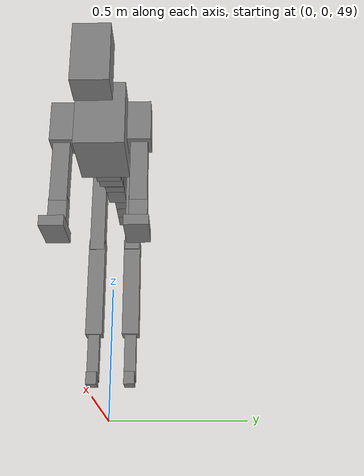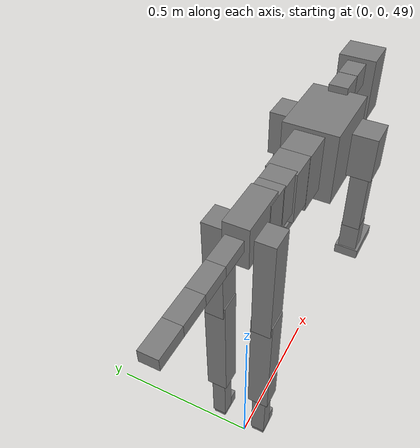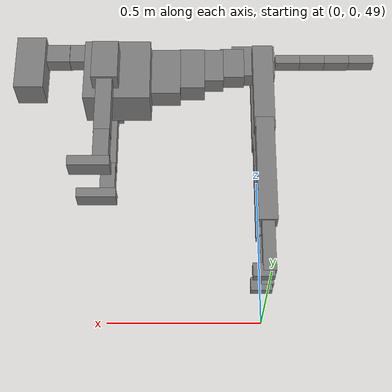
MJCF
<mujoco model="dog">

    <default>
        <joint armature="0.02" stiffness="1" damping="0.2" limited="true"/>
        <geom condim="3" friction="1 0.05 0.05" margin="0.01"/>
        <motor ctrllimited="true" ctrlrange="-1.0 1.0" forcelimited="true" gear="50"/>
    </default>

    <compiler inertiafromgeom="true" angle="radian"/>

    <option timestep="0.016" iterations="50" tolerance="1e-10" solver="Newton" jacobian="dense" cone="pyramidal"/>

    <size nconmax="20000" njmax="60000" nstack="5000000"/>
    <visual>
        <map force="0.1" zfar="30"/>
        <rgba haze="0.15 0.25 0.35 1"/>
        <quality shadowsize="2048"/>
        <global offwidth="800" offheight="800"/>
    </visual>

    <asset>
        <texture type="skybox" builtin="gradient" rgb1="0.3 0.5 0.7" rgb2="0 0 0" width="512" height="512"/>
        <texture name="texplane" type="2d" builtin="checker" rgb1=".2 .3 .4" rgb2=".1 0.15 0.2" width="512" height="512"
                 mark="cross" markrgb=".8 .8 .8"/>
        <texture name="texgeom" type="cube" builtin="flat" mark="cross" width="127" height="1278" rgb1="0.8 0.6 0.4"
                 rgb2="0.8 0.6 0.4" markrgb="1 1 1" random="0.01"/>

        <material name="matplane" reflectance="0.3" texture="texplane" texrepeat="1 1" texuniform="true"/>
        <material name="matgeom" texture="texgeom" texuniform="true" rgba="0.8 0.6 .4 1"/>
    </asset>

    <worldbody>
        <geom name="floor" pos="0 0 0" size="0 0 .25" type="plane" material="matplane" condim="3"/>

        <light directional="false" diffuse=".2 .2 .2" specular="0 0 0" pos="0 0 5" dir="0 0 -1" castshadow="false"/>
        <light mode="targetbodycom" target="torso" directional="false" diffuse=".8 .8 .8" specular="0.3 0.3 0.3"
               pos="0 0 4.0" dir="0 0 -1"/>

        <body name="root" pos="0 0 50">
            <freejoint name="root_1"/>
            <geom type="box" pos="0 0 -0.02" size="0.0774  0.0358  0.063" density="2030"/>

            <body name="spine1" pos="0.054 0 0">
                <joint name="spine1_y" axis="0 1 0" range="0 0.7" limited="true"/>
                <geom type="box" pos="0.02375 0 -0.03" size="0.04375  0.0375  0.05985" density="2030"/>

                <body name="spine2" pos="0.0612 0 0">
                    <joint name="spine2_y" axis="0 1 0" range="-0.15 0.15" limited="true"/>
                    <geom type="box" pos="0.03555  0  -0.04" size="0.04055  0.039  0.06615" density="2030"/>

                    <body name="spine3" pos="0.0730 0 0">
                        <joint name="spine3_y" axis="0 1 0" range="-0.15 0.15" limited="true"/>
                        <geom type="box" pos="0.03555  0  -0.057" size="0.04555  0.0445  0.081" density="2030"/>

                        <body name="spine4" pos="0.0780 0 0">
                            <joint name="spine4_y" axis="0 1 0" range="-0.15 0.15" limited="true"/>
                            <geom type="box" pos="0.05265  0  -0.07" size="0.05265  0.045  0.09135" density="2030"/>

                            <body name="torso" pos="0.1082 0 0">
                                <joint name="torso_y" axis="0 1 0" range="-0.15 0.15" limited="true"/>
                                <geom type="box" pos="0.11925  0  -0.085" size="0.11925  0.085  0.11745"
                                      density="2030"/>

                                <body name="neck1" pos="0.2160  0   0.0180">
                                    <joint name="neck1_y" axis="0 1 0" range="-1.2  -1" limited="true"/>
                                    <geom type="box" pos="0.0423  0  0" size="0.0423  0.03  0.036" density="2325"/>

                                    <body name="neck2" pos="0.0853  0  0">
                                        <joint name="neck2_y" axis="0 1 0" range="0.1  0" limited="true"/>
                                        <geom type="box" pos="0.0423  0  0" size="0.0423  0.03  0.036" density="2325"/>

                                        <body name="head" pos="0.0853  0  0">
                                            <joint name="head_y" axis="0 1 0" range="-0.3  -0.2" limited="true"/>
                                            <geom type="box" pos="0.0531  0  -0.055" size="0.0531  0.06  0.1044"
                                                  density="4030"/>

                                        </body>
                                    </body>
                                </body>

                                <body name="front_shoulder" pos="0.156  0   -0.0480">
                                    <joint name="front_shoulder_y" axis="0 1 0" range="-1 1.5" limited="true"/>
                                    <geom type="box" pos="0 0.13 -0.0466" size="0.0464  0.0397  0.0732" density="1158"/>
                                    <geom type="box" pos="0 -0.13 -0.0466" size="0.0464  0.0397  0.0732"
                                          density="1158"/>

                                    <body name="front_elbow" pos="0  0  -0.0931">
                                        <joint name="front_elbow_y" axis="0 1 0" range="-2 0" limited="true"/>
                                        <geom type="box" pos="0 0.13 -0.1203" size="0.0282  0.0289  0.1203"
                                              density="1081"/>
                                        <geom type="box" pos="0 -0.13 -0.1203" size="0.0282  0.0289  0.1203"
                                              density="1081"/>

                                        <body name="front_wrist" pos="0  0  -0.2406">
                                            <joint name="front_wrist_y" axis="0 1 0" range="-0.2 0" limited="true"/>
                                            <geom type="box" pos="0 0.13 -0.0532" size="0.0271  0.0302  0.0664"
                                                  density="1664"/>
                                            <geom type="box" pos="0 -0.13 -0.0532" size="0.0271  0.0302  0.0664"
                                                  density="1664"/>

                                            <body name="front_finger_end" pos="0  0  -0.1064">
                                                <joint name="front_finger_y" axis="0 1 0" range="-0.4 1"
                                                       limited="true"/>
                                                <geom type="box" pos="0.0390  0.13  -0.0021"
                                                      size="0.0714  0.0390  0.0171" density="1515"/>
                                                <geom type="box" pos="0.0390  -0.13  -0.0021"
                                                      size="0.0714  0.0390  0.0171" density="1515"/>

                                            </body>

                                        </body>
                                    </body>
                                </body>

                            </body>
                        </body>
                    </body>
                </body>
            </body>

            <body name="back_hip" pos="-0.03 0 -0.018">
                <joint name="back_hip_y" axis="0 1 0" range="-1.5 0.3" limited="true"/>
                <geom type="box" pos="0 0.07 -0.1439" size="0.0363  0.0285  0.1667" density="1154"/>
                <geom type="box" pos="0 -0.07 -0.1439" size="0.0363  0.0285  0.1667" density="1154"/>

                <body name="back_knee" pos="0  0  -0.2877">
                    <joint name="back_knee_y" axis="0 1 0" range="0 2.8" limited="true"/>
                    <geom type="box" pos="0 0.07 -0.1774" size="0.0324  0.0319  0.1930" density="1227"/>
                    <geom type="box" pos="0 -0.07 -0.1774" size="0.0324  0.0319  0.1930" density="1227"/>

                    <body name="back_ankle" pos="0  0  -0.3549">
                        <joint name="back_ankle_y" axis="0 1 0" range="-2.2 0" limited="true"/>
                        <geom type="box" pos="0 0.07 -0.0891" size="0.0218  0.0218  0.1004" density="1284"/>
                        <geom type="box" pos="0 -0.07 -0.0891" size="0.0218  0.0218  0.1004" density="1284"/>

                        <body name="back_toe_end" pos="0  0  -0.1783">
                            <joint name="back_toe_y" axis="0 1 0" range="-0.4 1" limited="true"/>
                            <geom type="box" pos="0.0197  0.07  -0.0082" size="0.0362  0.0197  0.0232" density="1515"/>
                            <geom type="box" pos="0.0197  -0.07  -0.0082" size="0.0362  0.0197  0.0232" density="1515"/>

                        </body>
                    </body>
                </body>
            </body>

            <body name="tail1" pos="-0.074 0 -0.006">
                <joint name="tail1_y" axis="0 1 0" range="-0.2 0.2" limited="true"/>
                <geom type="box" pos="-0.0536  0  0" size="0.045  0.025  0.0175" density="1587"/>

                <body name="tail2" pos="-0.09 0 0">
                    <joint name="tail2_y" axis="0 1 0" range="-0.2 0.2" limited="true"/>
                    <geom type="box" pos="-0.0536  0  0" size="0.045  0.025  0.0175" density="1587"/>

                    <body name="tail3" pos="-0.09 0 0">
                        <joint name="tail3_y" axis="0 1 0" range="-0.2 0.2" limited="true"/>
                        <geom type="box" pos="-0.0536  0  0" size="0.045  0.025  0.0175" density="1587"/>

                        <body name="tail4" pos="-0.09 0 0">
                            <joint name="tail4_y" axis="0 1 0" range="-0.2 0.2" limited="true"/>
                            <geom type="box" pos="-0.0536  0  0" size="0.045  0.025  0.0175" density="1587"/>

                        </body>
                    </body>
                </body>
            </body>
        </body>
    </worldbody>

    <actuator>
        <motor joint="spine1_y" forcerange="-150 150     "/>
        <motor joint="spine2_y" forcerange="-150 150     "/>
        <motor joint="spine3_y" forcerange="-150 150     "/>
        <motor joint="spine4_y" forcerange="-150 150     "/>
        <motor joint="torso_y" forcerange="-150 150     "/>
        <motor joint="neck1_y" forcerange="-100 100       "/>
        <motor joint="neck2_y" forcerange="-100 100       "/>
        <motor joint="head_y" forcerange="-150 150       "/>
        <motor joint="front_shoulder_y" forcerange="-179.52 185.00"/>
        <motor joint="front_elbow_y" forcerange="-167.05 142.84"/>
        <motor joint="front_wrist_y" forcerange="-133.53 107.77"/>
        <motor joint="front_finger_y" forcerange="-82.57 85.19"/>
        <motor joint="back_hip_y" forcerange="-212.51 367.31"/>
        <motor joint="back_knee_y" forcerange="-310.54 353.37"/>
        <motor joint="back_angle_y" forcerange="-115.91 132.54"/>
        <motor joint="back_toe_y" forcerange="-51.35 26.52"/>
        <motor joint="tail1_y" forcerange="-50 50     "/>
        <motor joint="tail2_y" forcerange="-50 50     "/>
        <motor joint="tail3_y" forcerange="-50 50     "/>
        <motor joint="tail4_y" forcerange="-50 50     "/>
    </actuator>
</mujoco>
